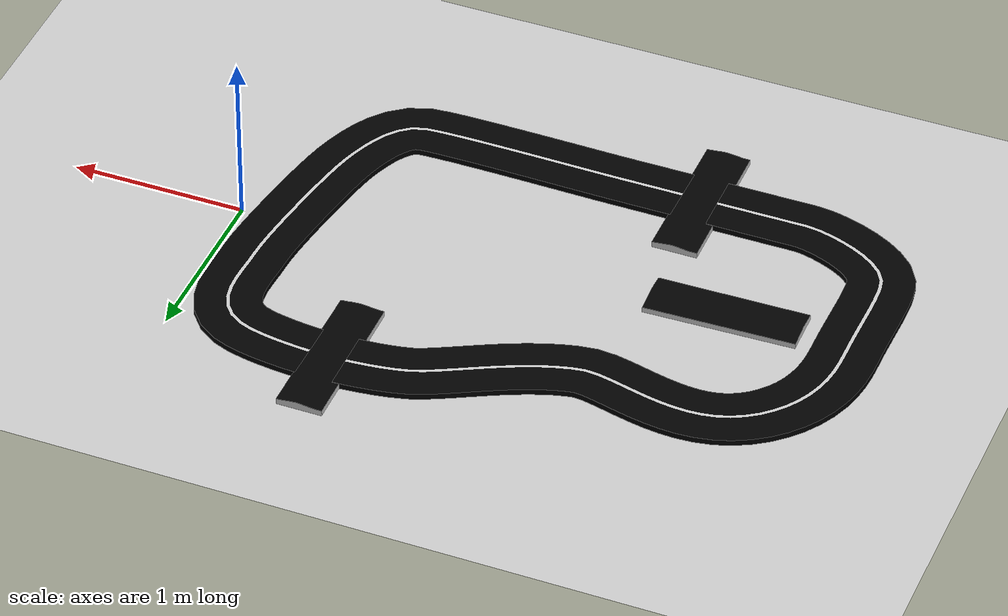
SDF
<sdf version="1.7">
 <world name="default">
  <light name="sun" type="directional">
   <pose>0 0 10 0 -0 0</pose>
   <diffuse>0.8 0.8 0.8 1</diffuse>
   <specular>0.2 0.2 0.2 1</specular>
   <attenuation>
    <range>1000</range>
    <constant>0.9</constant>
    <linear>0.01</linear>
    <quadratic>0.001</quadratic>
   </attenuation>
   <direction>-0.5 0.1 -0.9</direction>
   <spot><inner_angle>0</inner_angle><outer_angle>0</outer_angle><falloff>0</falloff></spot>
  </light>
  <model name="ground_plane">
   <static>1</static>
   <link name="link">
    <collision name="collision">
     <geometry><plane><normal>0 0 1</normal><size>100 100</size></plane></geometry>
     <surface><friction><ode><mu>100</mu><mu2>50</mu2></ode></friction></surface>
    </collision>
    <visual name="visual">
     <cast_shadows>0</cast_shadows>
     <geometry><plane><normal>0 0 1</normal><size>100 100</size></plane></geometry>
     <material>
      <script><uri>file://media/materials/scripts/gazebo.material</uri><name>Gazebo/Grey</name></script>
     </material>
    </visual>
   </link>
  </model>
  <gravity>0 0 -9.8</gravity>
  <magnetic_field>6e-06 2.3e-05 -4.2e-05</magnetic_field>
  <atmosphere type="adiabatic"/>
  <physics type="ode">
   <max_step_size>0.001</max_step_size>
   <real_time_factor>1</real_time_factor>
   <real_time_update_rate>1000</real_time_update_rate>
  </physics>
  <scene><ambient>0.4 0.4 0.4 1</ambient><background>0.7 0.7 0.7 1</background><shadows>1</shadows></scene>
  <spherical_coordinates>
   <surface_model>EARTH_WGS84</surface_model>
   <latitude_deg>0</latitude_deg>
   <longitude_deg>0</longitude_deg>
   <elevation>0</elevation>
   <heading_deg>0</heading_deg>
  </spherical_coordinates>
  <model name="road">
   <link name="link_0">
    <inertial>
     <mass>1</mass>
     <inertia>
      <ixx>0.166667</ixx>
      <ixy>0</ixy>
      <ixz>0</ixz>
      <iyy>0.166667</iyy>
      <iyz>0</iyz>
      <izz>0.166667</izz>
     </inertia>
    </inertial>
    <kinematic>1</kinematic>
    <visual name="visual">
     <geometry>
      <mesh><uri>model://mytrack/meshes/mytrack.dae</uri><scale>0.185995 0.185995 0.185995</scale></mesh>
     </geometry>
    </visual>
    <collision name="collision">
     <geometry>
      <mesh><uri>model://mytrack/meshes/mytrack.dae</uri><scale>0.185995 0.185995 0.185995</scale></mesh>
     </geometry>
     <surface>
      <friction>
       <ode><mu>1</mu><mu2>1</mu2><fdir1>0 0 0</fdir1><slip1>0</slip1><slip2>0</slip2></ode>
       <torsional>
        <coefficient>1</coefficient>
        <patch_radius>0</patch_radius>
        <surface_radius>0</surface_radius>
        <use_patch_radius>1</use_patch_radius>
        <ode><slip>0</slip></ode>
       </torsional>
      </friction>
      <bounce><restitution_coefficient>0</restitution_coefficient><threshold>1e+06</threshold></bounce>
      <contact>
       <collide_without_contact>0</collide_without_contact>
       <collide_without_contact_bitmask>1</collide_without_contact_bitmask>
       <collide_bitmask>2</collide_bitmask>
       <ode>
        <soft_cfm>0</soft_cfm>
        <soft_erp>0.2</soft_erp>
        <kp>1e+13</kp>
        <kd>1</kd>
        <max_vel>0.01</max_vel>
        <min_depth>0</min_depth>
       </ode>
       <bullet>
        <split_impulse>1</split_impulse>
        <split_impulse_penetration_threshold>-0.01</split_impulse_penetration_threshold>
        <soft_cfm>0</soft_cfm>
        <soft_erp>0.2</soft_erp>
        <kp>1e+13</kp>
        <kd>1</kd>
       </bullet>
      </contact>
     </surface>
    </collision>
   </link>
   <static>0</static>
   <pose>-2.37631 -1.00018 0 0 -0 0</pose>
  </model>
  <model name="curvedbox">
   <link name="link_0">
    <inertial>
     <mass>1</mass>
     <inertia>
      <ixx>0.166667</ixx>
      <ixy>0</ixy>
      <ixz>0</ixz>
      <iyy>0.166667</iyy>
      <iyz>0</iyz>
      <izz>0.166667</izz>
     </inertia>
    </inertial>
    <kinematic>1</kinematic>
    <visual name="visual">
     <geometry>
      <mesh><uri>model://mytrack/meshes/curvedbox.dae</uri><scale>0.029531 0.029531 0.029531</scale></mesh>
     </geometry>
    </visual>
    <collision name="collision">
     <geometry>
      <mesh><uri>model://mytrack/meshes/curvedbox.dae</uri><scale>0.029531 0.029531 0.029531</scale></mesh>
     </geometry>
     <surface>
      <friction>
       <ode><mu>1</mu><mu2>1</mu2><fdir1>0 0 0</fdir1><slip1>0</slip1><slip2>0</slip2></ode>
       <torsional>
        <coefficient>1</coefficient>
        <patch_radius>0</patch_radius>
        <surface_radius>0</surface_radius>
        <use_patch_radius>1</use_patch_radius>
        <ode><slip>0</slip></ode>
       </torsional>
      </friction>
      <bounce><restitution_coefficient>0</restitution_coefficient><threshold>1e+06</threshold></bounce>
      <contact>
       <collide_without_contact>0</collide_without_contact>
       <collide_without_contact_bitmask>1</collide_without_contact_bitmask>
       <collide_bitmask>0</collide_bitmask>
       <ode>
        <soft_cfm>0</soft_cfm>
        <soft_erp>0.2</soft_erp>
        <kp>1e+13</kp>
        <kd>1</kd>
        <max_vel>0.01</max_vel>
        <min_depth>0</min_depth>
       </ode>
       <bullet>
        <split_impulse>1</split_impulse>
        <split_impulse_penetration_threshold>-0.01</split_impulse_penetration_threshold>
        <soft_cfm>0</soft_cfm>
        <soft_erp>0.2</soft_erp>
        <kp>1e+13</kp>
        <kd>1</kd>
       </bullet>
      </contact>
     </surface>
    </collision>
   </link>
   <static>0</static>
   <pose>-2.41744 -0.59421 1.9e-05 0 -0 0</pose>
  </model>
  <model name="curvedbox_clone">
   <link name="link_0">
    <inertial>
     <mass>1</mass>
     <inertia>
      <ixx>0.166667</ixx>
      <ixy>0</ixy>
      <ixz>0</ixz>
      <iyy>0.166667</iyy>
      <iyz>0</iyz>
      <izz>0.166667</izz>
     </inertia>
    </inertial>
    <kinematic>1</kinematic>
    <visual name="visual">
     <geometry>
      <mesh><uri>model://mytrack/meshes/curvedbox.dae</uri><scale>0.029531 0.029531 0.029531</scale></mesh>
     </geometry>
    </visual>
    <collision name="collision">
     <geometry>
      <mesh><uri>model://mytrack/meshes/curvedbox.dae</uri><scale>0.029531 0.029531 0.029531</scale></mesh>
     </geometry>
     <surface>
      <friction>
       <ode><mu>1</mu><mu2>1</mu2><fdir1>0 0 0</fdir1><slip1>0</slip1><slip2>0</slip2></ode>
       <torsional>
        <coefficient>1</coefficient>
        <patch_radius>0</patch_radius>
        <surface_radius>0</surface_radius>
        <use_patch_radius>1</use_patch_radius>
        <ode><slip>0</slip></ode>
       </torsional>
      </friction>
      <bounce><restitution_coefficient>0</restitution_coefficient><threshold>1e+06</threshold></bounce>
      <contact>
       <collide_without_contact>0</collide_without_contact>
       <collide_without_contact_bitmask>1</collide_without_contact_bitmask>
       <collide_bitmask>0</collide_bitmask>
       <ode>
        <soft_cfm>0</soft_cfm>
        <soft_erp>0.2</soft_erp>
        <kp>1e+13</kp>
        <kd>1</kd>
        <max_vel>0.01</max_vel>
        <min_depth>0</min_depth>
       </ode>
       <bullet>
        <split_impulse>1</split_impulse>
        <split_impulse_penetration_threshold>-0.01</split_impulse_penetration_threshold>
        <soft_cfm>0</soft_cfm>
        <soft_erp>0.2</soft_erp>
        <kp>1e+13</kp>
        <kd>1</kd>
       </bullet>
      </contact>
     </surface>
    </collision>
   </link>
   <static>0</static>
   <pose>-1.04515 1.35294 0.000176 0 -0 0</pose>
  </model>
  <model name="curvedbox_clone_0">
   <link name="link_0">
    <inertial>
     <mass>1</mass>
     <inertia>
      <ixx>0.166667</ixx>
      <ixy>0</ixy>
      <ixz>0</ixz>
      <iyy>0.166667</iyy>
      <iyz>0</iyz>
      <izz>0.166667</izz>
     </inertia>
    </inertial>
    <kinematic>1</kinematic>
    <visual name="visual">
     <geometry>
      <mesh><uri>model://mytrack/meshes/curvedbox.dae</uri><scale>0.029531 0.029531 0.029531</scale></mesh>
     </geometry>
    </visual>
    <collision name="collision">
     <geometry>
      <mesh><uri>model://mytrack/meshes/curvedbox.dae</uri><scale>0.029531 0.029531 0.029531</scale></mesh>
     </geometry>
     <surface>
      <friction>
       <ode><mu>1</mu><mu2>1</mu2><fdir1>0 0 0</fdir1><slip1>0</slip1><slip2>0</slip2></ode>
       <torsional>
        <coefficient>1</coefficient>
        <patch_radius>0</patch_radius>
        <surface_radius>0</surface_radius>
        <use_patch_radius>1</use_patch_radius>
        <ode><slip>0</slip></ode>
       </torsional>
      </friction>
      <bounce><restitution_coefficient>0</restitution_coefficient><threshold>1e+06</threshold></bounce>
      <contact>
       <collide_without_contact>0</collide_without_contact>
       <collide_without_contact_bitmask>1</collide_without_contact_bitmask>
       <collide_bitmask>0</collide_bitmask>
       <ode>
        <soft_cfm>0</soft_cfm>
        <soft_erp>0.2</soft_erp>
        <kp>1e+13</kp>
        <kd>1</kd>
        <max_vel>0.01</max_vel>
        <min_depth>0</min_depth>
       </ode>
       <bullet>
        <split_impulse>1</split_impulse>
        <split_impulse_penetration_threshold>-0.01</split_impulse_penetration_threshold>
        <soft_cfm>0</soft_cfm>
        <soft_erp>0.2</soft_erp>
        <kp>1e+13</kp>
        <kd>1</kd>
       </bullet>
      </contact>
     </surface>
    </collision>
   </link>
   <static>0</static>
   <pose>-2.36085 -0.066024 -0.001142 0 0 -1.55215</pose>
  </model>
 </world>
</sdf>
